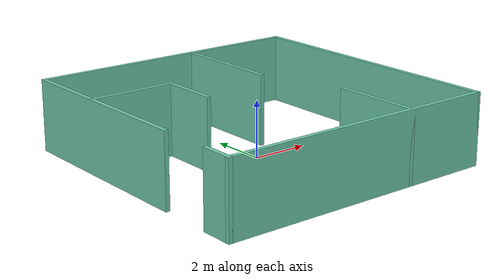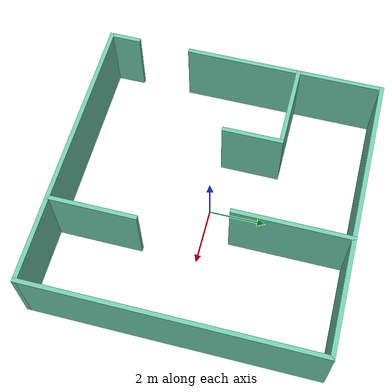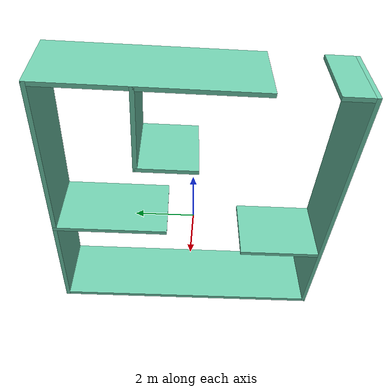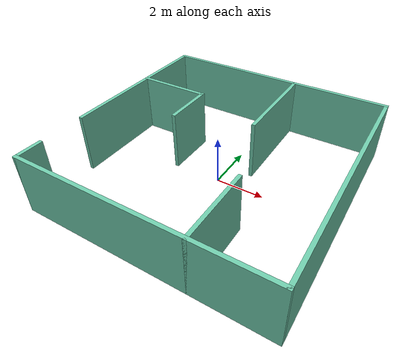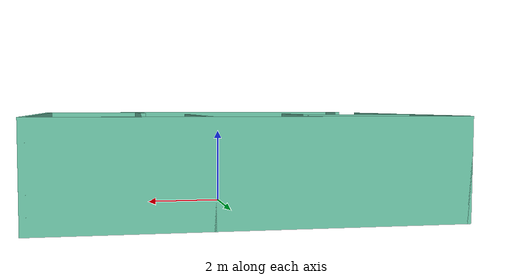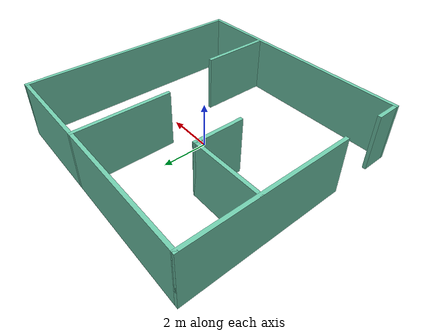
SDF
<?xml version='1.0'?>
<sdf version='1.6'>
  <model name='scholar_house'>
    <pose frame=''>0 0 0 0 -0 0</pose>
    <link name='Wall_0'>
      <collision name='Wall_0_Collision'>
        <geometry>
          <box>
            <size>10.15 0.15 2.5</size>
          </box>
        </geometry>
        <pose frame=''>0 0 1.25 0 -0 0</pose>
      </collision>
      <visual name='Wall_0_Visual'>
        <pose frame=''>0 0 1.25 0 -0 0</pose>
        <geometry>
          <box>
            <size>10.15 0.15 2.5</size>
          </box>
        </geometry>
        <material>
          <script>
            <uri>file://media/materials/scripts/gazebo.material</uri>
            <name>Gazebo/Grey</name>
          </script>
          <ambient>0.435294 0.796078 0.67451 1</ambient>
        </material>
        <meta>
          <layer>0</layer>
        </meta>
      </visual>
      <pose frame=''>-0 -5 0 0 -0 0</pose>
    </link>
    <link name='Wall_10'>
      <collision name='Wall_10_Collision'>
        <geometry>
          <box>
            <size>3.15 0.15 2.5</size>
          </box>
        </geometry>
        <pose frame=''>0 0 1.25 0 -0 0</pose>
      </collision>
      <visual name='Wall_10_Visual'>
        <pose frame=''>0 0 1.25 0 -0 0</pose>
        <geometry>
          <box>
            <size>3.15 0.15 2.5</size>
          </box>
        </geometry>
        <material>
          <script>
            <uri>file://media/materials/scripts/gazebo.material</uri>
            <name>Gazebo/Grey</name>
          </script>
          <ambient>0.435294 0.796078 0.67451 1</ambient>
        </material>
        <meta>
          <layer>0</layer>
        </meta>
      </visual>
      <pose frame=''>-3.5 2 0 0 -0 0</pose>
    </link>
    <link name='Wall_12'>
      <collision name='Wall_12_Collision'>
        <geometry>
          <box>
            <size>2.15 0.15 2.5</size>
          </box>
        </geometry>
        <pose frame=''>0 0 1.25 0 -0 0</pose>
      </collision>
      <visual name='Wall_12_Visual'>
        <pose frame=''>0 0 1.25 0 -0 0</pose>
        <geometry>
          <box>
            <size>2.15 0.15 2.5</size>
          </box>
        </geometry>
        <material>
          <script>
            <uri>file://media/materials/scripts/gazebo.material</uri>
            <name>Gazebo/Grey</name>
          </script>
          <ambient>0.435294 0.796078 0.67451 1</ambient>
        </material>
        <meta>
          <layer>0</layer>
        </meta>
      </visual>
      <pose frame=''>-2 1 0 0 -0 -1.5708</pose>
    </link>
    <link name='Wall_14'>
      <collision name='Wall_14_Collision'>
        <geometry>
          <box>
            <size>3.15 0.15 2.5</size>
          </box>
        </geometry>
        <pose frame=''>0 0 1.25 0 -0 0</pose>
      </collision>
      <visual name='Wall_14_Visual'>
        <pose frame=''>0 0 1.25 0 -0 0</pose>
        <geometry>
          <box>
            <size>3.15 0.15 2.5</size>
          </box>
        </geometry>
        <material>
          <script>
            <uri>file://media/materials/scripts/gazebo.material</uri>
            <name>Gazebo/Grey</name>
          </script>
          <ambient>0.435294 0.796078 0.67451 1</ambient>
        </material>
        <meta>
          <layer>0</layer>
        </meta>
      </visual>
      <pose frame=''>2 -3.5 0 0 -0 1.5708</pose>
    </link>
    <link name='Wall_16'>
      <collision name='Wall_16_Collision'>
        <geometry>
          <box>
            <size>4.15 0.15 2.5</size>
          </box>
        </geometry>
        <pose frame=''>0 0 1.25 0 -0 0</pose>
      </collision>
      <visual name='Wall_16_Visual'>
        <pose frame=''>0 0 1.25 0 -0 0</pose>
        <geometry>
          <box>
            <size>4.15 0.15 2.5</size>
          </box>
        </geometry>
        <material>
          <script>
            <uri>file://media/materials/scripts/gazebo.material</uri>
            <name>Gazebo/Grey</name>
          </script>
          <ambient>0.435294 0.796078 0.67451 1</ambient>
        </material>
        <meta>
          <layer>0</layer>
        </meta>
      </visual>
      <pose frame=''>1 3 0 0 -0 -1.5708</pose>
    </link>
    <link name='Wall_2'>
      <collision name='Wall_2_Collision'>
        <geometry>
          <box>
            <size>1.15 0.15 2.5</size>
          </box>
        </geometry>
        <pose frame=''>0 0 1.25 0 -0 0</pose>
      </collision>
      <visual name='Wall_2_Visual'>
        <pose frame=''>0 0 1.25 0 -0 0</pose>
        <geometry>
          <box>
            <size>1.15 0.15 2.5</size>
          </box>
        </geometry>
        <material>
          <script>
            <uri>file://media/materials/scripts/gazebo.material</uri>
            <name>Gazebo/Grey</name>
          </script>
          <ambient>0.435294 0.796078 0.67451 1</ambient>
        </material>
        <meta>
          <layer>0</layer>
        </meta>
      </visual>
      <pose frame=''>-5 -4.5 0 0 -0 1.5708</pose>
    </link>
    <link name='Wall_4'>
      <collision name='Wall_4_Collision'>
        <geometry>
          <box>
            <size>7.15 0.15 2.5</size>
          </box>
        </geometry>
        <pose frame=''>0 0 1.25 0 -0 0</pose>
      </collision>
      <visual name='Wall_4_Visual'>
        <pose frame=''>0 0 1.25 0 -0 0</pose>
        <geometry>
          <box>
            <size>7.15 0.15 2.5</size>
          </box>
        </geometry>
        <material>
          <script>
            <uri>file://media/materials/scripts/gazebo.material</uri>
            <name>Gazebo/Grey</name>
          </script>
          <ambient>0.435294 0.796078 0.67451 1</ambient>
        </material>
        <meta>
          <layer>0</layer>
        </meta>
      </visual>
      <pose frame=''>-5 1.5 0 0 -0 1.5708</pose>
    </link>
    <link name='Wall_6'>
      <collision name='Wall_6_Collision'>
        <geometry>
          <box>
            <size>10.15 0.15 2.5</size>
          </box>
        </geometry>
        <pose frame=''>0 0 1.25 0 -0 0</pose>
      </collision>
      <visual name='Wall_6_Visual'>
        <pose frame=''>0 0 1.25 0 -0 0</pose>
        <geometry>
          <box>
            <size>10.15 0.15 2.5</size>
          </box>
        </geometry>
        <material>
          <script>
            <uri>file://media/materials/scripts/gazebo.material</uri>
            <name>Gazebo/Grey</name>
          </script>
          <ambient>0.435294 0.796078 0.67451 1</ambient>
        </material>
        <meta>
          <layer>0</layer>
        </meta>
      </visual>
      <pose frame=''>-0 5 0 0 -0 0</pose>
    </link>
    <link name='Wall_8'>
      <collision name='Wall_8_Collision'>
        <geometry>
          <box>
            <size>10.15 0.15 2.5</size>
          </box>
        </geometry>
        <pose frame=''>0 0 1.25 0 -0 0</pose>
      </collision>
      <visual name='Wall_8_Visual'>
        <pose frame=''>0 0 1.25 0 -0 0</pose>
        <geometry>
          <box>
            <size>10.15 0.15 2.5</size>
          </box>
        </geometry>
        <material>
          <script>
            <uri>file://media/materials/scripts/gazebo.material</uri>
            <name>Gazebo/Grey</name>
          </script>
          <ambient>0.435294 0.796078 0.67451 1</ambient>
        </material>
        <meta>
          <layer>0</layer>
        </meta>
      </visual>
      <pose frame=''>5 -0 0 0 -0 -1.5708</pose>
    </link>
    <static>1</static>
  </model>
</sdf>
